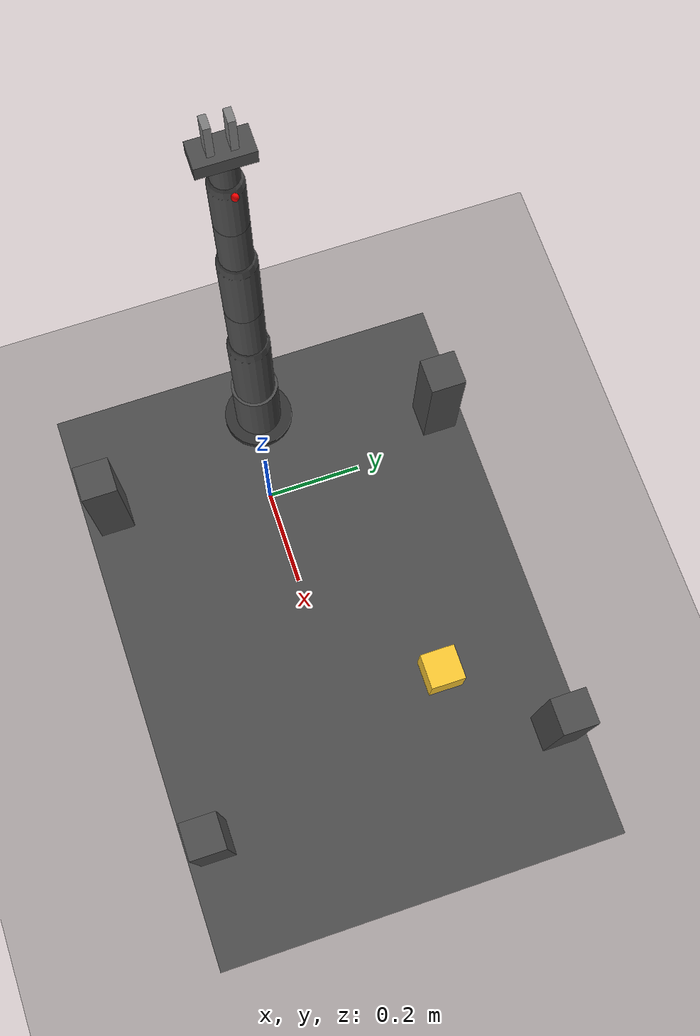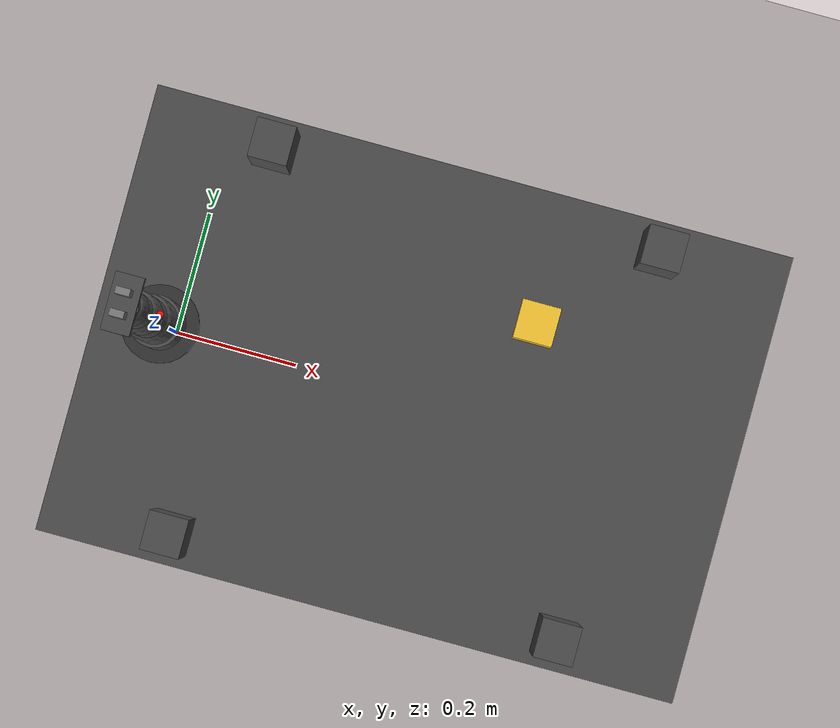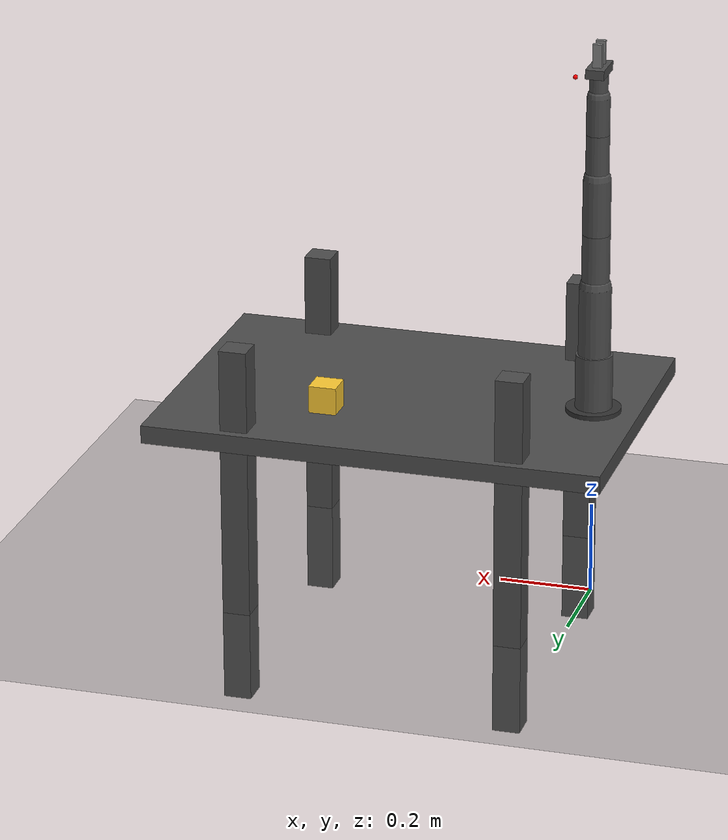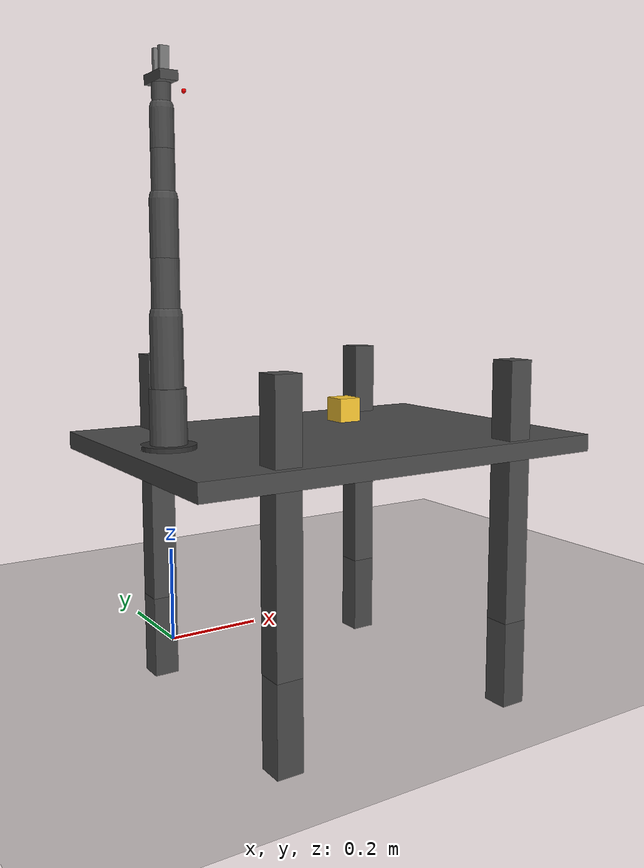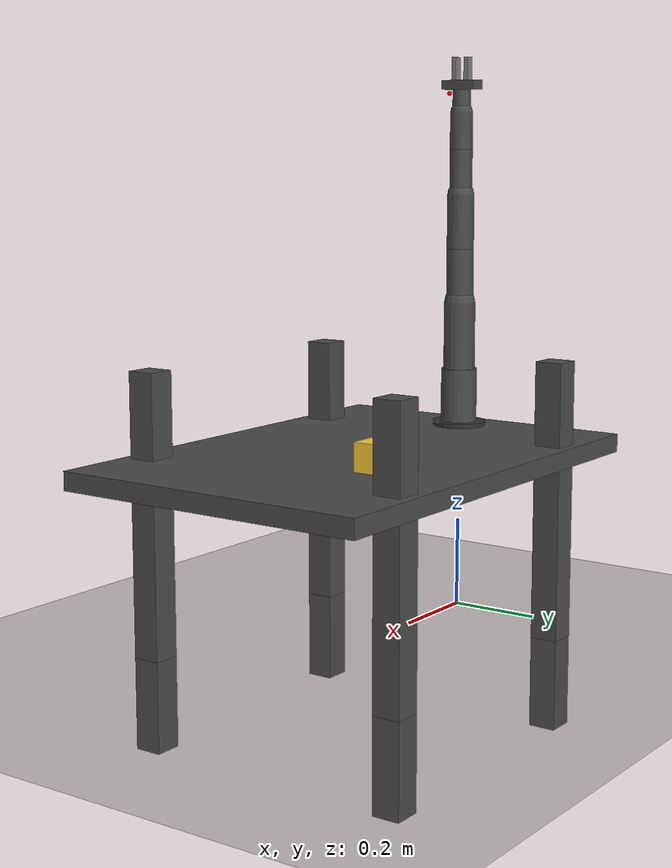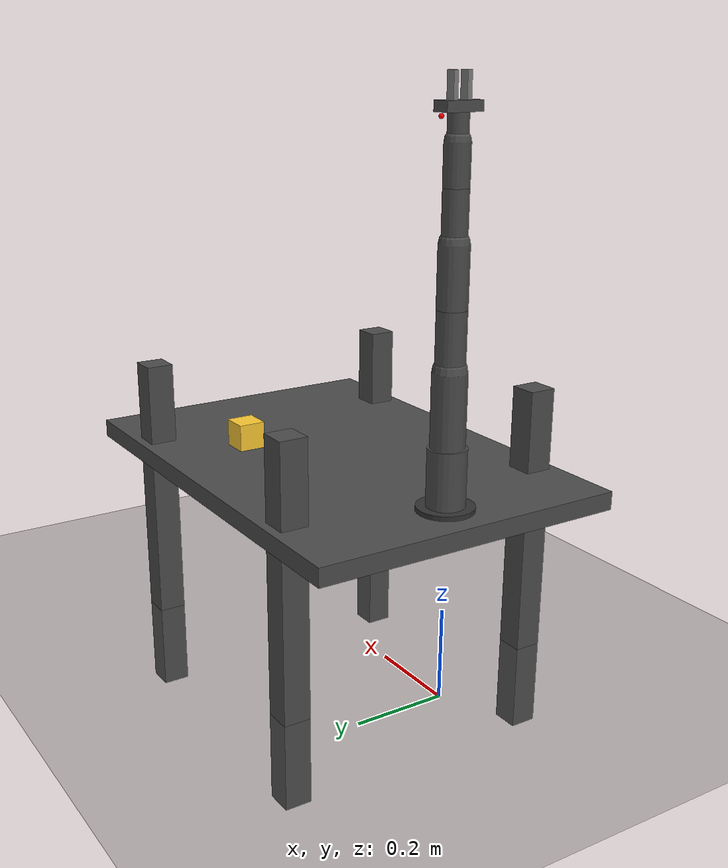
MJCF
<mujoco model="franka_rgb_scene">
  <compiler angle="radian" meshdir="assets" autolimits="true"/>

  <option timestep="0.001" iterations="50" tolerance="1e-10" solver="Newton"
          gravity="0 0 -9.81" cone="pyramidal" impratio="10">
    <flag warmstart="enable"/>
  </option>

  <visual>
    <headlight diffuse="0.8 0.8 0.8" ambient="0.4 0.4 0.4" specular="0.2 0.2 0.2"/>
    <global azimuth="120" elevation="-20" offwidth="800" offheight="600"/>
  </visual>

  <default>
    <joint armature="0.1" damping="5" limited="true"/>
    <geom contype="1" conaffinity="1" friction="1 0.005 0.001" rgba="0.3 0.3 0.3 1"/>
    <position ctrllimited="true" ctrlrange="-100 100" kp="500" kv="100"/>
  </default>

  <asset>
    <texture type="skybox" builtin="gradient" rgb1="0.6 0.8 1.0" rgb2="0.2 0.4 0.8" width="512" height="512"/>
    <texture name="grid" type="2d" builtin="checker" rgb1="0.9 0.9 0.9" rgb2="0.7 0.7 0.7" width="512" height="512"/>
    <material name="grid_mat" texture="grid" texrepeat="8 8" reflectance="0.1"/>
    <material name="table_mat" rgba="0.6 0.4 0.2 1"/>
    <material name="robot_mat" rgba="0.8 0.1 0.1 1"/>
    <material name="joint_mat" rgba="0.2 0.2 0.2 1"/>
    <material name="cam_mat" rgba="0.1 0.1 0.8 1"/>
  </asset>

  <worldbody>
    <!-- Top-down reference camera -->
    <camera name="top" mode="fixed" pos="0.4 0 1.5" euler="0 0 0" fovy="45"/>

    <!-- Floor -->
    <geom name="floor" type="plane" size="5 5 0.1" material="grid_mat"/>

    <!-- Table -->
    <body name="table" pos="0 0 0">
      <geom name="table_top" type="box" size="0.5 0.35 0.02" pos="0.4 0 0.4" material="table_mat"/>
      <geom name="table_leg1" type="box" size="0.03 0.03 0.4" pos="0.1 -0.3 0.2"/>
      <geom name="table_leg2" type="box" size="0.03 0.03 0.4" pos="0.7 -0.3 0.2"/>
      <geom name="table_leg3" type="box" size="0.03 0.03 0.4" pos="0.1 0.3 0.2"/>
      <geom name="table_leg4" type="box" size="0.03 0.03 0.4" pos="0.7 0.3 0.2"/>
    </body>

    <!-- Target object on table -->
    <body name="cube" pos="0.55 0.15 0.45">
      <freejoint/>
      <geom name="cube_geom" type="box" size="0.03 0.03 0.03" rgba="1 0.8 0.2 1" mass="0.05"/>
    </body>

    <!-- Robot Base -->
    <body name="robot_base" pos="0 0 0.4">
      <geom name="base" type="cylinder" size="0.06 0.03" rgba="0.2 0.2 0.2 1"/>

      <!-- Link 1 -->
      <body name="link1">
        <joint name="joint1" type="hinge" axis="0 0 1" range="-2.8973 2.8973" damping="10"/>
        <geom name="link1_geom" type="cylinder" size="0.04 0.075" pos="0 0 0.075" material="robot_mat"/>

        <!-- Link 2 -->
        <body name="link2" pos="0 0 0.15">
          <joint name="joint2" type="hinge" axis="0 1 0" range="-1.7628 1.7628" damping="10"/>
          <geom name="link2_geom" type="capsule" size="0.035" fromto="0 0 0 0 0 0.15" material="joint_mat"/>

          <!-- Link 3 -->
          <body name="link3" pos="0 0 0.15">
            <joint name="joint3" type="hinge" axis="0 0 1" range="-2.8973 2.8973" damping="10"/>
            <geom name="link3_geom" type="cylinder" size="0.03 0.06" pos="0 0 0.06" material="robot_mat"/>

            <!-- Link 4 -->
            <body name="link4" pos="0 0 0.12">
              <joint name="joint4" type="hinge" axis="0 1 0" range="-3.0718 -0.0698" damping="10"/>
              <geom name="link4_geom" type="capsule" size="0.03" fromto="0 0 0 0 0 0.12" material="joint_mat"/>

              <!-- Link 5 -->
              <body name="link5" pos="0 0 0.12">
                <joint name="joint5" type="hinge" axis="0 0 1" range="-2.8973 2.8973" damping="10"/>
                <geom name="link5_geom" type="cylinder" size="0.025 0.05" pos="0 0 0.05" material="robot_mat"/>

                <!-- Link 6 -->
                <body name="link6" pos="0 0 0.10">
                  <joint name="joint6" type="hinge" axis="0 1 0" range="-0.0175 3.7525" damping="10"/>
                  <geom name="link6_geom" type="capsule" size="0.025" fromto="0 0 0 0 0 0.08" material="joint_mat"/>

                  <!-- Link 7 (Wrist) -->
                  <body name="link7" pos="0 0 0.08">
                    <joint name="joint7" type="hinge" axis="0 0 1" range="-2.8973 2.8973" damping="10"/>
                    <geom name="link7_geom" type="cylinder" size="0.02 0.03" pos="0 0 0.03" material="robot_mat"/>

                    <!-- Gripper Base -->
                    <body name="gripper_base" pos="0 0 0.06">
                      <geom name="gripper_base_geom" type="box" size="0.02 0.04 0.01" rgba="0.3 0.3 0.3 1"/>

                      <!-- Left Finger -->
                      <body name="finger1">
                        <joint name="finger_joint1" type="slide" axis="0 1 0" range="0 0.04" damping="5"/>
                        <geom name="finger1_geom" type="box" size="0.01 0.005 0.03" pos="0 0.015 0.03" rgba="0.5 0.5 0.5 1"/>
                      </body>

                      <!-- Right Finger -->
                      <body name="finger2">
                        <joint name="finger_joint2" type="slide" axis="0 -1 0" range="0 0.04" damping="5"/>
                        <geom name="finger2_geom" type="box" size="0.01 0.005 0.03" pos="0 -0.015 0.03" rgba="0.5 0.5 0.5 1"/>
                      </body>

                      <!-- RGB Camera -->
                      <camera name="wrist_cam" mode="fixed" pos="0.05 0 -0.02" euler="0 0 0" fovy="60"/>
                      <geom name="wrist_cam_marker" type="sphere" size="0.005" pos="0.05 0 -0.02" rgba="1 0 0 1" contype="0" conaffinity="0"/>
                    </body>
                  </body>
                </body>
              </body>
            </body>
          </body>
        </body>
      </body>
    </body>
  </worldbody>

  <actuator>
    <position joint="joint1" kp="1000" kv="100" ctrlrange="-2.8973 2.8973"/>
    <position joint="joint2" kp="1000" kv="100" ctrlrange="-1.7628 1.7628"/>
    <position joint="joint3" kp="1000" kv="100" ctrlrange="-2.8973 2.8973"/>
    <position joint="joint4" kp="1000" kv="100" ctrlrange="-3.0718 -0.0698"/>
    <position joint="joint5" kp="500"  kv="50"  ctrlrange="-2.8973 2.8973"/>
    <position joint="joint6" kp="500"  kv="50"  ctrlrange="-0.0175 3.7525"/>
    <position joint="joint7" kp="500"  kv="50"  ctrlrange="-2.8973 2.8973"/>
    <position joint="finger_joint1" kp="200" kv="20" ctrlrange="0 0.04"/>
    <position joint="finger_joint2" kp="200" kv="20" ctrlrange="0 0.04"/>
  </actuator>

  <keyframe>
    <key name="home"
         qpos="0.55 0.15 0.45 1 0 0 0 0 1.57 0 0.3 0 0 0 0 0"
         ctrl="0 1.57 0 0.3 0 0 0 0 0"/>
  </keyframe>
</mujoco>
